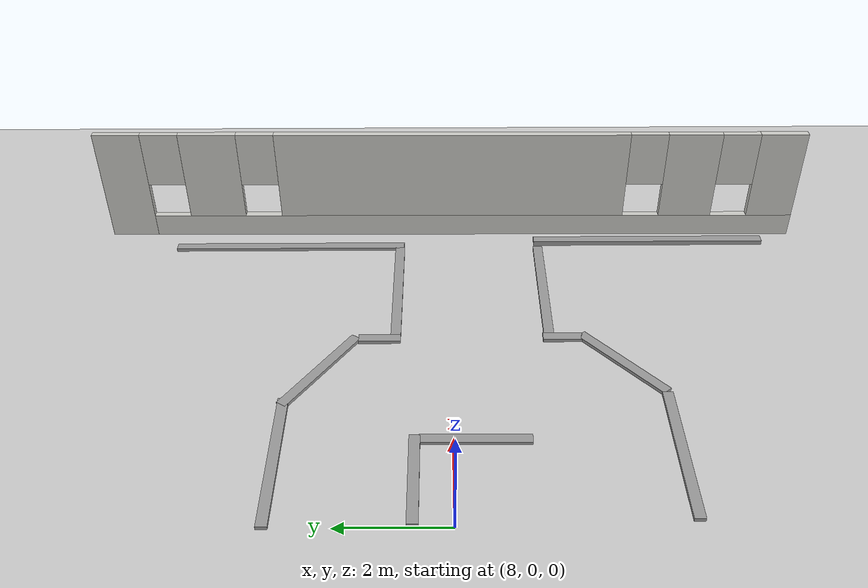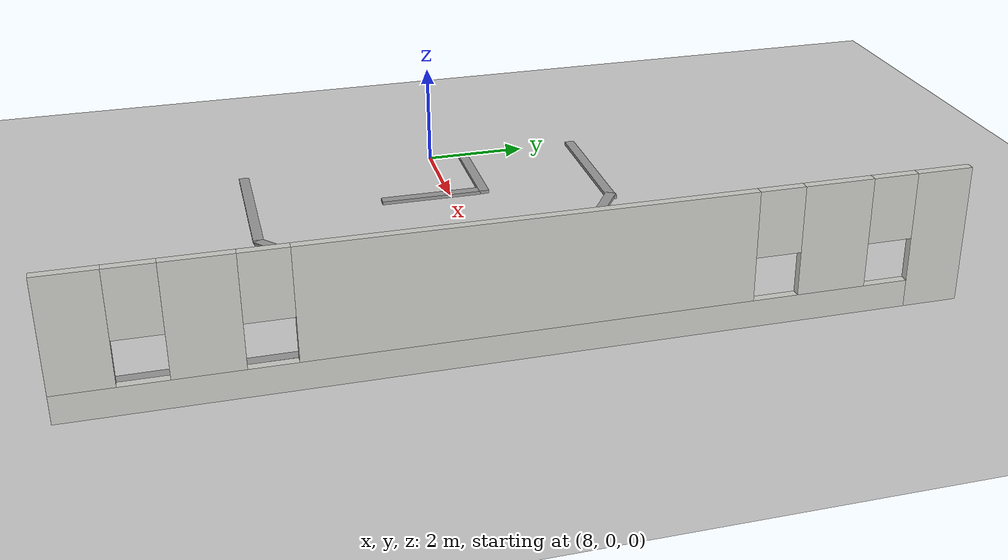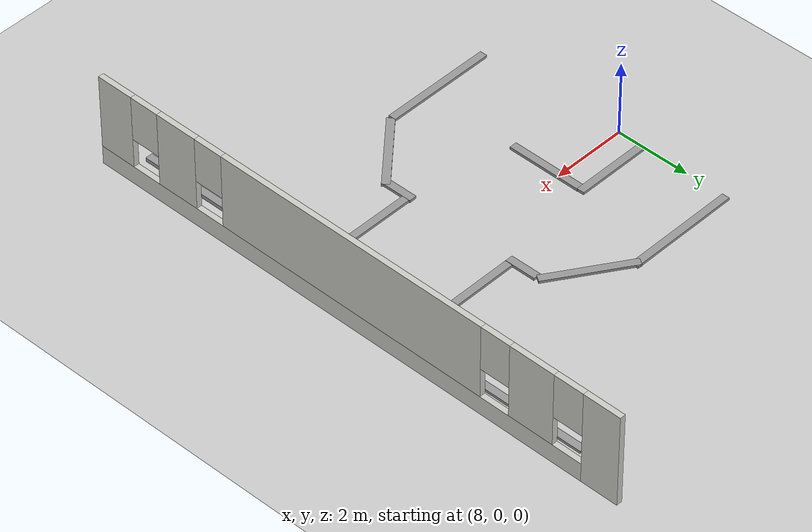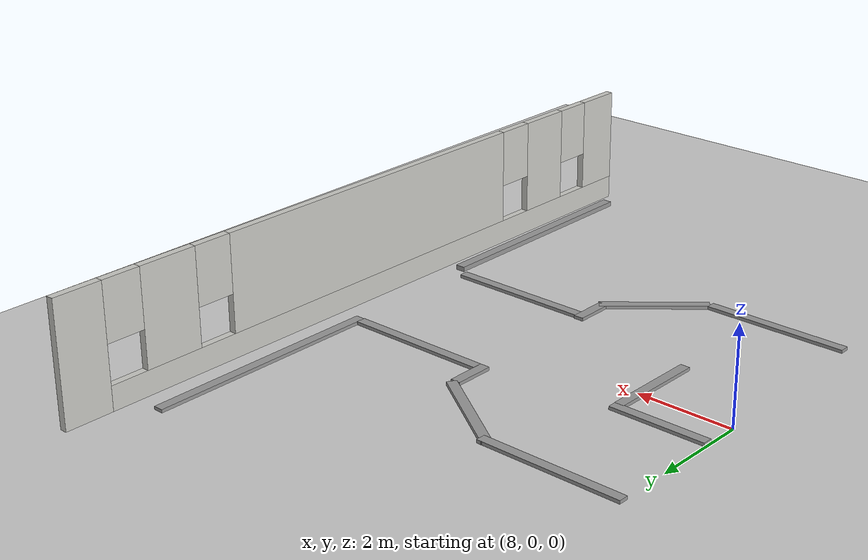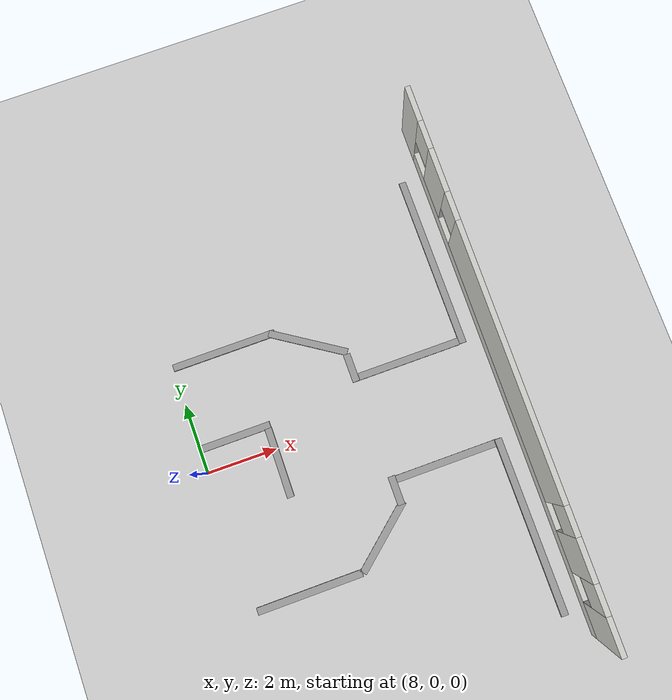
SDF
<sdf version="1.6">
 <world name="default">
  <model name="ground_plane">
   <static>1</static>
   <link name="link">
    <collision name="collision">
     <geometry><plane><normal>0 0 1</normal><size>100 100</size></plane></geometry>
     <surface><friction><ode><mu>100</mu><mu2>50</mu2></ode></friction></surface>
    </collision>
    <visual name="visual">
     <cast_shadows>0</cast_shadows>
     <geometry><plane><normal>0 0 1</normal><size>100 100</size></plane></geometry>
     <material>
      <script><uri>file://media/materials/scripts/gazebo.material</uri><name>Gazebo/Grey</name></script>
     </material>
    </visual>
   </link>
  </model>
  <model name="brick_box_3x1x3">
   <link name="link_1_clone_1">
    <pose>22.9433 -0.208958 0.688101 0 -0 0</pose>
    <inertial>
     <mass>1</mass>
     <inertia>
      <ixx>0.166667</ixx>
      <ixy>0</ixy>
      <ixz>0</ixz>
      <iyy>0.166667</iyy>
      <iyz>0</iyz>
      <izz>0.166667</izz>
     </inertia>
    </inertial>
    <visual name="visual">
     <pose>0 0 -0.5 0 -0 0</pose>
     <geometry><box><size>0.2 5 0.1</size></box></geometry>
     <material>
      <lighting>1</lighting>
      <script><uri>file://media/materials/scripts/gazebo.material</uri><name>Gazebo/Grey</name></script>
      <ambient>0.3 0.3 0.3 1</ambient>
      <diffuse>0.7 0.7 0.7 1</diffuse>
      <specular>0.01 0.01 0.01 1</specular>
      <emissive>0 0 0 1</emissive>
      <shader type="vertex"><normal_map>__default__</normal_map></shader>
     </material>
    </visual>
    <collision name="collision">
     <pose>0 0 -0.5 0 -0 0</pose>
     <geometry><box><size>0.1 5 0.2</size></box></geometry>
     <surface>
      <friction>
       <ode><mu>1</mu><mu2>1</mu2><fdir1>0 0 0</fdir1><slip1>0</slip1><slip2>0</slip2></ode>
       <torsional>
        <coefficient>1</coefficient>
        <patch_radius>0</patch_radius>
        <surface_radius>0</surface_radius>
        <use_patch_radius>1</use_patch_radius>
        <ode><slip>0</slip></ode>
       </torsional>
      </friction>
      <bounce><restitution_coefficient>0</restitution_coefficient><threshold>1e+06</threshold></bounce>
      <contact>
       <collide_without_contact>0</collide_without_contact>
       <collide_without_contact_bitmask>1</collide_without_contact_bitmask>
       <collide_bitmask>1</collide_bitmask>
       <ode>
        <soft_cfm>0</soft_cfm>
        <soft_erp>0.2</soft_erp>
        <kp>1e+13</kp>
        <kd>1</kd>
        <max_vel>0.01</max_vel>
        <min_depth>0</min_depth>
       </ode>
       <bullet>
        <split_impulse>1</split_impulse>
        <split_impulse_penetration_threshold>-0.01</split_impulse_penetration_threshold>
        <soft_cfm>0</soft_cfm>
        <soft_erp>0.2</soft_erp>
        <kp>1e+13</kp>
        <kd>1</kd>
       </bullet>
      </contact>
     </surface>
    </collision>
   </link>
   <link name="link_1_clone_2">
    <pose>23.0117 7.63499 0.5 0 -0 0</pose>
    <inertial>
     <mass>1</mass>
     <inertia>
      <ixx>0.166667</ixx>
      <ixy>0</ixy>
      <ixz>0</ixz>
      <iyy>0.166667</iyy>
      <iyz>0</iyz>
      <izz>0.166667</izz>
     </inertia>
    </inertial>
    <visual name="visual">
     <pose>0 0 -0.5 0 -0 0</pose>
     <geometry><box><size>0.2 5 0.1</size></box></geometry>
     <material>
      <lighting>1</lighting>
      <script><uri>file://media/materials/scripts/gazebo.material</uri><name>Gazebo/Grey</name></script>
      <ambient>0.3 0.3 0.3 1</ambient>
      <diffuse>0.7 0.7 0.7 1</diffuse>
      <specular>0.01 0.01 0.01 1</specular>
      <emissive>0 0 0 1</emissive>
      <shader type="vertex"><normal_map>__default__</normal_map></shader>
     </material>
    </visual>
    <collision name="collision">
     <pose>0 0 -0.5 0 -0 0</pose>
     <geometry><box><size>0.1 5 0.2</size></box></geometry>
     <surface>
      <friction>
       <ode><mu>1</mu><mu2>1</mu2><fdir1>0 0 0</fdir1><slip1>0</slip1><slip2>0</slip2></ode>
       <torsional>
        <coefficient>1</coefficient>
        <patch_radius>0</patch_radius>
        <surface_radius>0</surface_radius>
        <use_patch_radius>1</use_patch_radius>
        <ode><slip>0</slip></ode>
       </torsional>
      </friction>
      <bounce><restitution_coefficient>0</restitution_coefficient><threshold>1e+06</threshold></bounce>
      <contact>
       <collide_without_contact>0</collide_without_contact>
       <collide_without_contact_bitmask>1</collide_without_contact_bitmask>
       <collide_bitmask>1</collide_bitmask>
       <ode>
        <soft_cfm>0</soft_cfm>
        <soft_erp>0.2</soft_erp>
        <kp>1e+13</kp>
        <kd>1</kd>
        <max_vel>0.01</max_vel>
        <min_depth>0</min_depth>
       </ode>
       <bullet>
        <split_impulse>1</split_impulse>
        <split_impulse_penetration_threshold>-0.01</split_impulse_penetration_threshold>
        <soft_cfm>0</soft_cfm>
        <soft_erp>0.2</soft_erp>
        <kp>1e+13</kp>
        <kd>1</kd>
       </bullet>
      </contact>
     </surface>
    </collision>
   </link>
   <link name="link_1_clone_3_clone_0">
    <pose>21.4333 2.1957 0.5 0 -0 0</pose>
    <inertial>
     <mass>1</mass>
     <inertia>
      <ixx>0.166667</ixx>
      <ixy>0</ixy>
      <ixz>0</ixz>
      <iyy>0.166667</iyy>
      <iyz>0</iyz>
      <izz>0.166667</izz>
     </inertia>
    </inertial>
    <visual name="visual">
     <pose>0 0 -0.5 0 -0 0</pose>
     <geometry><box><size>3 0.2 0.1</size></box></geometry>
     <material>
      <lighting>1</lighting>
      <script><uri>file://media/materials/scripts/gazebo.material</uri><name>Gazebo/Grey</name></script>
      <ambient>0.3 0.3 0.3 1</ambient>
      <diffuse>0.7 0.7 0.7 1</diffuse>
      <specular>0.01 0.01 0.01 1</specular>
      <emissive>0 0 0 1</emissive>
      <shader type="vertex"><normal_map>__default__</normal_map></shader>
     </material>
    </visual>
    <collision name="collision">
     <pose>0 0 -0.5 0 -0 0</pose>
     <geometry><box><size>3 0.2 0.2</size></box></geometry>
     <surface>
      <friction>
       <ode><mu>1</mu><mu2>1</mu2><fdir1>0 0 0</fdir1><slip1>0</slip1><slip2>0</slip2></ode>
       <torsional>
        <coefficient>1</coefficient>
        <patch_radius>0</patch_radius>
        <surface_radius>0</surface_radius>
        <use_patch_radius>1</use_patch_radius>
        <ode><slip>0</slip></ode>
       </torsional>
      </friction>
      <bounce><restitution_coefficient>0</restitution_coefficient><threshold>1e+06</threshold></bounce>
      <contact>
       <collide_without_contact>0</collide_without_contact>
       <collide_without_contact_bitmask>1</collide_without_contact_bitmask>
       <collide_bitmask>1</collide_bitmask>
       <ode>
        <soft_cfm>0</soft_cfm>
        <soft_erp>0.2</soft_erp>
        <kp>1e+13</kp>
        <kd>1</kd>
        <max_vel>0.01</max_vel>
        <min_depth>0</min_depth>
       </ode>
       <bullet>
        <split_impulse>1</split_impulse>
        <split_impulse_penetration_threshold>-0.01</split_impulse_penetration_threshold>
        <soft_cfm>0</soft_cfm>
        <soft_erp>0.2</soft_erp>
        <kp>1e+13</kp>
        <kd>1</kd>
       </bullet>
      </contact>
     </surface>
    </collision>
   </link>
   <link name="link_1_clone_3_clone_1">
    <pose>21.421 5.22151 0.5 0 -0 0</pose>
    <inertial>
     <mass>1</mass>
     <inertia>
      <ixx>0.166667</ixx>
      <ixy>0</ixy>
      <ixz>0</ixz>
      <iyy>0.166667</iyy>
      <iyz>0</iyz>
      <izz>0.166667</izz>
     </inertia>
    </inertial>
    <visual name="visual">
     <pose>0 0 -0.5 0 -0 0</pose>
     <geometry><box><size>3 0.2 0.1</size></box></geometry>
     <material>
      <lighting>1</lighting>
      <script><uri>file://media/materials/scripts/gazebo.material</uri><name>Gazebo/Grey</name></script>
      <ambient>0.3 0.3 0.3 1</ambient>
      <diffuse>0.7 0.7 0.7 1</diffuse>
      <specular>0.01 0.01 0.01 1</specular>
      <emissive>0 0 0 1</emissive>
      <shader type="vertex"><normal_map>__default__</normal_map></shader>
     </material>
    </visual>
    <collision name="collision">
     <pose>0 0 -0.5 0 -0 0</pose>
     <geometry><box><size>3 0.2 0.2</size></box></geometry>
     <surface>
      <friction>
       <ode><mu>1</mu><mu2>1</mu2><fdir1>0 0 0</fdir1><slip1>0</slip1><slip2>0</slip2></ode>
       <torsional>
        <coefficient>1</coefficient>
        <patch_radius>0</patch_radius>
        <surface_radius>0</surface_radius>
        <use_patch_radius>1</use_patch_radius>
        <ode><slip>0</slip></ode>
       </torsional>
      </friction>
      <bounce><restitution_coefficient>0</restitution_coefficient><threshold>1e+06</threshold></bounce>
      <contact>
       <collide_without_contact>0</collide_without_contact>
       <collide_without_contact_bitmask>1</collide_without_contact_bitmask>
       <collide_bitmask>1</collide_bitmask>
       <ode>
        <soft_cfm>0</soft_cfm>
        <soft_erp>0.2</soft_erp>
        <kp>1e+13</kp>
        <kd>1</kd>
        <max_vel>0.01</max_vel>
        <min_depth>0</min_depth>
       </ode>
       <bullet>
        <split_impulse>1</split_impulse>
        <split_impulse_penetration_threshold>-0.01</split_impulse_penetration_threshold>
        <soft_cfm>0</soft_cfm>
        <soft_erp>0.2</soft_erp>
        <kp>1e+13</kp>
        <kd>1</kd>
       </bullet>
      </contact>
     </surface>
    </collision>
   </link>
   <link name="link_1_clone_3_clone_10_clone_1_clone_4">
    <pose>19.8376 1.90733 0.5 0 0 -1.56821</pose>
    <inertial>
     <mass>0.239353</mass>
     <inertia>
      <ixx>0.0406036</ixx>
      <ixy>0</ixy>
      <ixz>0</ixz>
      <iyy>0.0210496</iyy>
      <iyz>0</iyz>
      <izz>0.0217608</izz>
     </inertia>
    </inertial>
    <visual name="visual">
     <pose>0 0 -0.5 0 -0 0</pose>
     <geometry><box><size>0.823187 0.203535 0.1</size></box></geometry>
     <material>
      <lighting>1</lighting>
      <script><uri>file://media/materials/scripts/gazebo.material</uri><name>Gazebo/Grey</name></script>
      <ambient>0.3 0.3 0.3 1</ambient>
      <diffuse>0.7 0.7 0.7 1</diffuse>
      <specular>0.01 0.01 0.01 1</specular>
      <emissive>0 0 0 1</emissive>
      <shader type="vertex"><normal_map>__default__</normal_map></shader>
     </material>
    </visual>
    <collision name="collision">
     <pose>0 0 -0.5 0 -0 0</pose>
     <geometry><box><size>0.823187 0.203535 0.2</size></box></geometry>
     <surface>
      <friction>
       <ode><mu>1</mu><mu2>1</mu2><fdir1>0 0 0</fdir1><slip1>0</slip1><slip2>0</slip2></ode>
       <torsional>
        <coefficient>1</coefficient>
        <patch_radius>0</patch_radius>
        <surface_radius>0</surface_radius>
        <use_patch_radius>1</use_patch_radius>
        <ode><slip>0</slip></ode>
       </torsional>
      </friction>
      <bounce><restitution_coefficient>0</restitution_coefficient><threshold>1e+06</threshold></bounce>
      <contact>
       <collide_without_contact>0</collide_without_contact>
       <collide_without_contact_bitmask>1</collide_without_contact_bitmask>
       <collide_bitmask>1</collide_bitmask>
       <ode>
        <soft_cfm>0</soft_cfm>
        <soft_erp>0.2</soft_erp>
        <kp>1e+13</kp>
        <kd>1</kd>
        <max_vel>0.01</max_vel>
        <min_depth>0</min_depth>
       </ode>
       <bullet>
        <split_impulse>1</split_impulse>
        <split_impulse_penetration_threshold>-0.01</split_impulse_penetration_threshold>
        <soft_cfm>0</soft_cfm>
        <soft_erp>0.2</soft_erp>
        <kp>1e+13</kp>
        <kd>1</kd>
       </bullet>
      </contact>
     </surface>
    </collision>
   </link>
   <link name="link_1_clone_3_clone_10_clone_1_clone_5">
    <pose>19.8123 5.5335 0.5 0 0 -1.56821</pose>
    <inertial>
     <mass>0.239353</mass>
     <inertia>
      <ixx>0.0406036</ixx>
      <ixy>0</ixy>
      <ixz>0</ixz>
      <iyy>0.0210496</iyy>
      <iyz>0</iyz>
      <izz>0.0217608</izz>
     </inertia>
    </inertial>
    <visual name="visual">
     <pose>0 0 -0.5 0 -0 0</pose>
     <geometry><box><size>0.823187 0.203535 0.1</size></box></geometry>
     <material>
      <lighting>1</lighting>
      <script><uri>file://media/materials/scripts/gazebo.material</uri><name>Gazebo/Grey</name></script>
      <ambient>0.3 0.3 0.3 1</ambient>
      <diffuse>0.7 0.7 0.7 1</diffuse>
      <specular>0.01 0.01 0.01 1</specular>
      <emissive>0 0 0 1</emissive>
      <shader type="vertex"><normal_map>__default__</normal_map></shader>
     </material>
    </visual>
    <collision name="collision">
     <pose>0 0 -0.5 0 -0 0</pose>
     <geometry><box><size>0.823187 0.203535 0.2</size></box></geometry>
     <surface>
      <friction>
       <ode><mu>1</mu><mu2>1</mu2><fdir1>0 0 0</fdir1><slip1>0</slip1><slip2>0</slip2></ode>
       <torsional>
        <coefficient>1</coefficient>
        <patch_radius>0</patch_radius>
        <surface_radius>0</surface_radius>
        <use_patch_radius>1</use_patch_radius>
        <ode><slip>0</slip></ode>
       </torsional>
      </friction>
      <bounce><restitution_coefficient>0</restitution_coefficient><threshold>1e+06</threshold></bounce>
      <contact>
       <collide_without_contact>0</collide_without_contact>
       <collide_without_contact_bitmask>1</collide_without_contact_bitmask>
       <collide_bitmask>1</collide_bitmask>
       <ode>
        <soft_cfm>0</soft_cfm>
        <soft_erp>0.2</soft_erp>
        <kp>1e+13</kp>
        <kd>1</kd>
        <max_vel>0.01</max_vel>
        <min_depth>0</min_depth>
       </ode>
       <bullet>
        <split_impulse>1</split_impulse>
        <split_impulse_penetration_threshold>-0.01</split_impulse_penetration_threshold>
        <soft_cfm>0</soft_cfm>
        <soft_erp>0.2</soft_erp>
        <kp>1e+13</kp>
        <kd>1</kd>
       </bullet>
      </contact>
     </surface>
    </collision>
   </link>
   <link name="link_1_clone_3_clone_10_clone_4">
    <pose>18.8978 6.62107 0.5 0 0 -0.579619</pose>
    <inertial>
     <mass>0.66633</mass>
     <inertia>
      <ixx>0.113036</ixx>
      <ixy>0</ixy>
      <ixz>0</ixz>
      <iyy>0.0793326</iyy>
      <iyz>0</iyz>
      <izz>0.0813132</izz>
     </inertia>
    </inertial>
    <visual name="visual">
     <pose>0 0 -0.5 0 -0 0</pose>
     <geometry><box><size>2.29164 0.203535 0.1</size></box></geometry>
     <material>
      <lighting>1</lighting>
      <script><uri>file://media/materials/scripts/gazebo.material</uri><name>Gazebo/Grey</name></script>
      <ambient>0.3 0.3 0.3 1</ambient>
      <diffuse>0.7 0.7 0.7 1</diffuse>
      <specular>0.01 0.01 0.01 1</specular>
      <emissive>0 0 0 1</emissive>
      <shader type="vertex"><normal_map>__default__</normal_map></shader>
     </material>
    </visual>
    <collision name="collision">
     <pose>0 0 -0.5 0 -0 0</pose>
     <geometry><box><size>2.29164 0.203535 0.2</size></box></geometry>
     <surface>
      <friction>
       <ode><mu>1</mu><mu2>1</mu2><fdir1>0 0 0</fdir1><slip1>0</slip1><slip2>0</slip2></ode>
       <torsional>
        <coefficient>1</coefficient>
        <patch_radius>0</patch_radius>
        <surface_radius>0</surface_radius>
        <use_patch_radius>1</use_patch_radius>
        <ode><slip>0</slip></ode>
       </torsional>
      </friction>
      <bounce><restitution_coefficient>0</restitution_coefficient><threshold>1e+06</threshold></bounce>
      <contact>
       <collide_without_contact>0</collide_without_contact>
       <collide_without_contact_bitmask>1</collide_without_contact_bitmask>
       <collide_bitmask>1</collide_bitmask>
       <ode>
        <soft_cfm>0</soft_cfm>
        <soft_erp>0.2</soft_erp>
        <kp>1e+13</kp>
        <kd>1</kd>
        <max_vel>0.01</max_vel>
        <min_depth>0</min_depth>
       </ode>
       <bullet>
        <split_impulse>1</split_impulse>
        <split_impulse_penetration_threshold>-0.01</split_impulse_penetration_threshold>
        <soft_cfm>0</soft_cfm>
        <soft_erp>0.2</soft_erp>
        <kp>1e+13</kp>
        <kd>1</kd>
       </bullet>
      </contact>
     </surface>
    </collision>
   </link>
   <link name="link_1_clone_3_clone_10_clone_4_clone_clone_clone">
    <pose>19.0759 0.851415 0.5 0 0 -2.43222</pose>
    <inertial>
     <mass>0.638044</mass>
     <inertia>
      <ixx>0.108237</ixx>
      <ixy>0</ixy>
      <ixz>0</ixz>
      <iyy>0.0740707</iyy>
      <iyz>0</iyz>
      <izz>0.0759667</izz>
     </inertia>
    </inertial>
    <visual name="visual">
     <pose>0 0 -0.5 0 -0 0</pose>
     <geometry><box><size>2.19436 0.203535 0.1</size></box></geometry>
     <material>
      <lighting>1</lighting>
      <script><uri>file://media/materials/scripts/gazebo.material</uri><name>Gazebo/Grey</name></script>
      <ambient>0.3 0.3 0.3 1</ambient>
      <diffuse>0.7 0.7 0.7 1</diffuse>
      <specular>0.01 0.01 0.01 1</specular>
      <emissive>0 0 0 1</emissive>
      <shader type="vertex"><normal_map>__default__</normal_map></shader>
     </material>
    </visual>
    <collision name="collision">
     <pose>0 0 -0.5 0 -0 0</pose>
     <geometry><box><size>2.19436 0.203535 0.2</size></box></geometry>
     <surface>
      <friction>
       <ode><mu>1</mu><mu2>1</mu2><fdir1>0 0 0</fdir1><slip1>0</slip1><slip2>0</slip2></ode>
       <torsional>
        <coefficient>1</coefficient>
        <patch_radius>0</patch_radius>
        <surface_radius>0</surface_radius>
        <use_patch_radius>1</use_patch_radius>
        <ode><slip>0</slip></ode>
       </torsional>
      </friction>
      <bounce><restitution_coefficient>0</restitution_coefficient><threshold>1e+06</threshold></bounce>
      <contact>
       <collide_without_contact>0</collide_without_contact>
       <collide_without_contact_bitmask>1</collide_without_contact_bitmask>
       <collide_bitmask>1</collide_bitmask>
       <ode>
        <soft_cfm>0</soft_cfm>
        <soft_erp>0.2</soft_erp>
        <kp>1e+13</kp>
        <kd>1</kd>
        <max_vel>0.01</max_vel>
        <min_depth>0</min_depth>
       </ode>
       <bullet>
        <split_impulse>1</split_impulse>
        <split_impulse_penetration_threshold>-0.01</split_impulse_penetration_threshold>
        <soft_cfm>0</soft_cfm>
        <soft_erp>0.2</soft_erp>
        <kp>1e+13</kp>
        <kd>1</kd>
       </bullet>
      </contact>
     </surface>
    </collision>
   </link>
   <link name="link_1_clone_3_clone_6_clone_clone_1">
    <pose>16.1511 4.7991 0.5 0 -0 0</pose>
    <inertial>
     <mass>0.667428</mass>
     <inertia>
      <ixx>0.111238</ixx>
      <ixy>0</ixy>
      <ixz>0</ixz>
      <iyy>0.0803952</iyy>
      <iyz>0</iyz>
      <izz>0.0803952</izz>
     </inertia>
    </inertial>
    <visual name="visual">
     <pose>0 0 -0.5 0 -0 0</pose>
     <geometry><box><size>2.00229 0.2 0.1</size></box></geometry>
     <material>
      <lighting>1</lighting>
      <script><uri>file://media/materials/scripts/gazebo.material</uri><name>Gazebo/Grey</name></script>
      <ambient>0.3 0.3 0.3 1</ambient>
      <diffuse>0.7 0.7 0.7 1</diffuse>
      <specular>0.01 0.01 0.01 1</specular>
      <emissive>0 0 0 1</emissive>
      <shader type="vertex"><normal_map>__default__</normal_map></shader>
     </material>
    </visual>
    <collision name="collision">
     <pose>0 0 -0.5 0 -0 0</pose>
     <geometry><box><size>2.00229 0.2 0.2</size></box></geometry>
     <surface>
      <friction>
       <ode><mu>1</mu><mu2>1</mu2><fdir1>0 0 0</fdir1><slip1>0</slip1><slip2>0</slip2></ode>
       <torsional>
        <coefficient>1</coefficient>
        <patch_radius>0</patch_radius>
        <surface_radius>0</surface_radius>
        <use_patch_radius>1</use_patch_radius>
        <ode><slip>0</slip></ode>
       </torsional>
      </friction>
      <bounce><restitution_coefficient>0</restitution_coefficient><threshold>1e+06</threshold></bounce>
      <contact>
       <collide_without_contact>0</collide_without_contact>
       <collide_without_contact_bitmask>1</collide_without_contact_bitmask>
       <collide_bitmask>1</collide_bitmask>
       <ode>
        <soft_cfm>0</soft_cfm>
        <soft_erp>0.2</soft_erp>
        <kp>1e+13</kp>
        <kd>1</kd>
        <max_vel>0.01</max_vel>
        <min_depth>0</min_depth>
       </ode>
       <bullet>
        <split_impulse>1</split_impulse>
        <split_impulse_penetration_threshold>-0.01</split_impulse_penetration_threshold>
        <soft_cfm>0</soft_cfm>
        <soft_erp>0.2</soft_erp>
        <kp>1e+13</kp>
        <kd>1</kd>
       </bullet>
      </contact>
     </surface>
    </collision>
   </link>
   <link name="link_1_clone_3_clone_6_clone_clone_clone_clone_clone">
    <pose>17.0548 3.71598 0.5 0 0 -1.57783</pose>
    <inertial>
     <mass>0.667428</mass>
     <inertia>
      <ixx>0.111238</ixx>
      <ixy>0</ixy>
      <ixz>0</ixz>
      <iyy>0.0803952</iyy>
      <iyz>0</iyz>
      <izz>0.0803952</izz>
     </inertia>
    </inertial>
    <visual name="visual">
     <pose>0 0 -0.5 0 -0 0</pose>
     <geometry><box><size>2.00229 0.2 0.1</size></box></geometry>
     <material>
      <lighting>1</lighting>
      <script><uri>file://media/materials/scripts/gazebo.material</uri><name>Gazebo/Grey</name></script>
      <ambient>0.3 0.3 0.3 1</ambient>
      <diffuse>0.7 0.7 0.7 1</diffuse>
      <specular>0.01 0.01 0.01 1</specular>
      <emissive>0 0 0 1</emissive>
      <shader type="vertex"><normal_map>__default__</normal_map></shader>
     </material>
    </visual>
    <collision name="collision">
     <pose>0 0 -0.5 0 -0 0</pose>
     <geometry><box><size>2.00229 0.2 0.2</size></box></geometry>
     <surface>
      <friction>
       <ode><mu>1</mu><mu2>1</mu2><fdir1>0 0 0</fdir1><slip1>0</slip1><slip2>0</slip2></ode>
       <torsional>
        <coefficient>1</coefficient>
        <patch_radius>0</patch_radius>
        <surface_radius>0</surface_radius>
        <use_patch_radius>1</use_patch_radius>
        <ode><slip>0</slip></ode>
       </torsional>
      </friction>
      <bounce><restitution_coefficient>0</restitution_coefficient><threshold>1e+06</threshold></bounce>
      <contact>
       <collide_without_contact>0</collide_without_contact>
       <collide_without_contact_bitmask>1</collide_without_contact_bitmask>
       <collide_bitmask>1</collide_bitmask>
       <ode>
        <soft_cfm>0</soft_cfm>
        <soft_erp>0.2</soft_erp>
        <kp>1e+13</kp>
        <kd>1</kd>
        <max_vel>0.01</max_vel>
        <min_depth>0</min_depth>
       </ode>
       <bullet>
        <split_impulse>1</split_impulse>
        <split_impulse_penetration_threshold>-0.01</split_impulse_penetration_threshold>
        <soft_cfm>0</soft_cfm>
        <soft_erp>0.2</soft_erp>
        <kp>1e+13</kp>
        <kd>1</kd>
       </bullet>
      </contact>
     </surface>
    </collision>
   </link>
   <link name="link_1_clone_3_clone_8">
    <pose>16.7166 0.14783 0.5 0 -0 0</pose>
    <inertial>
     <mass>1</mass>
     <inertia>
      <ixx>0.166667</ixx>
      <ixy>0</ixy>
      <ixz>0</ixz>
      <iyy>0.166667</iyy>
      <iyz>0</iyz>
      <izz>0.166667</izz>
     </inertia>
    </inertial>
    <visual name="visual">
     <pose>0 0 -0.5 0 -0 0</pose>
     <geometry><box><size>3 0.2 0.1</size></box></geometry>
     <material>
      <lighting>1</lighting>
      <script><uri>file://media/materials/scripts/gazebo.material</uri><name>Gazebo/Grey</name></script>
      <ambient>0.3 0.3 0.3 1</ambient>
      <diffuse>0.7 0.7 0.7 1</diffuse>
      <specular>0.01 0.01 0.01 1</specular>
      <emissive>0 0 0 1</emissive>
      <shader type="vertex"><normal_map>__default__</normal_map></shader>
     </material>
    </visual>
    <collision name="collision">
     <pose>0 0 -0.5 0 -0 0</pose>
     <geometry><box><size>3 0.2 0.2</size></box></geometry>
     <surface>
      <friction>
       <ode><mu>1</mu><mu2>1</mu2><fdir1>0 0 0</fdir1><slip1>0</slip1><slip2>0</slip2></ode>
       <torsional>
        <coefficient>1</coefficient>
        <patch_radius>0</patch_radius>
        <surface_radius>0</surface_radius>
        <use_patch_radius>1</use_patch_radius>
        <ode><slip>0</slip></ode>
       </torsional>
      </friction>
      <bounce><restitution_coefficient>0</restitution_coefficient><threshold>1e+06</threshold></bounce>
      <contact>
       <collide_without_contact>0</collide_without_contact>
       <collide_without_contact_bitmask>1</collide_without_contact_bitmask>
       <collide_bitmask>1</collide_bitmask>
       <ode>
        <soft_cfm>0</soft_cfm>
        <soft_erp>0.2</soft_erp>
        <kp>1e+13</kp>
        <kd>1</kd>
        <max_vel>0.01</max_vel>
        <min_depth>0</min_depth>
       </ode>
       <bullet>
        <split_impulse>1</split_impulse>
        <split_impulse_penetration_threshold>-0.01</split_impulse_penetration_threshold>
        <soft_cfm>0</soft_cfm>
        <soft_erp>0.2</soft_erp>
        <kp>1e+13</kp>
        <kd>1</kd>
       </bullet>
      </contact>
     </surface>
    </collision>
   </link>
   <link name="link_1_clone_3_clone_9">
    <pose>16.6024 7.21797 0.5 0 -0 0</pose>
    <inertial>
     <mass>1</mass>
     <inertia>
      <ixx>0.166667</ixx>
      <ixy>0</ixy>
      <ixz>0</ixz>
      <iyy>0.166667</iyy>
      <iyz>0</iyz>
      <izz>0.166667</izz>
     </inertia>
    </inertial>
    <visual name="visual">
     <pose>0 0 -0.5 0 -0 0</pose>
     <geometry><box><size>3 0.2 0.1</size></box></geometry>
     <material>
      <lighting>1</lighting>
      <script><uri>file://media/materials/scripts/gazebo.material</uri><name>Gazebo/Grey</name></script>
      <ambient>0.3 0.3 0.3 1</ambient>
      <diffuse>0.7 0.7 0.7 1</diffuse>
      <specular>0.01 0.01 0.01 1</specular>
      <emissive>0 0 0 1</emissive>
      <shader type="vertex"><normal_map>__default__</normal_map></shader>
     </material>
    </visual>
    <collision name="collision">
     <pose>0 0 -0.5 0 -0 0</pose>
     <geometry><box><size>3 0.2 0.2</size></box></geometry>
     <surface>
      <friction>
       <ode><mu>1</mu><mu2>1</mu2><fdir1>0 0 0</fdir1><slip1>0</slip1><slip2>0</slip2></ode>
       <torsional>
        <coefficient>1</coefficient>
        <patch_radius>0</patch_radius>
        <surface_radius>0</surface_radius>
        <use_patch_radius>1</use_patch_radius>
        <ode><slip>0</slip></ode>
       </torsional>
      </friction>
      <bounce><restitution_coefficient>0</restitution_coefficient><threshold>1e+06</threshold></bounce>
      <contact>
       <collide_without_contact>0</collide_without_contact>
       <collide_without_contact_bitmask>1</collide_without_contact_bitmask>
       <collide_bitmask>1</collide_bitmask>
       <ode>
        <soft_cfm>0</soft_cfm>
        <soft_erp>0.2</soft_erp>
        <kp>1e+13</kp>
        <kd>1</kd>
        <max_vel>0.01</max_vel>
        <min_depth>0</min_depth>
       </ode>
       <bullet>
        <split_impulse>1</split_impulse>
        <split_impulse_penetration_threshold>-0.01</split_impulse_penetration_threshold>
        <soft_cfm>0</soft_cfm>
        <soft_erp>0.2</soft_erp>
        <kp>1e+13</kp>
        <kd>1</kd>
       </bullet>
      </contact>
     </surface>
    </collision>
   </link>
   <static>1</static>
   <pose>-7.10254 -4.10597 0 0 -0 0</pose>
  </model>
  <model name="CV1_giardino2">
   <link name="Wall_0_clone">
    <pose>14.0185 0.09324 0 0 0 -1.57729</pose>
    <visual name="Wall_0_Visual_4">
     <pose>5.1919 0 1.5 0 -0 0</pose>
     <geometry><box><size>1.15146 0.15 2</size></box></geometry>
     <material>
      <script><uri>file://media/materials/scripts/gazebo.material</uri><name>Gazebo/CeilingTiled</name></script>
      <ambient>1 1 1 1</ambient>
      <diffuse>1 1 1 1</diffuse>
      <specular>0 0 0 1</specular>
      <emissive>0 0 0 1</emissive>
      <shader type="pixel"/>
     </material>
    </visual>
    <visual name="Wall_0_Visual_1">
     <pose>0.499892 0 0.25 0 -0 0</pose>
     <geometry><box><size>14.1401 0.15 0.5</size></box></geometry>
     <material>
      <script><uri>file://media/materials/scripts/gazebo.material</uri><name>Gazebo/CeilingTiled</name></script>
      <ambient>1 1 1 1</ambient>
      <diffuse>1 1 1 1</diffuse>
      <specular>0 0 0 1</specular>
      <emissive>0 0 0 1</emissive>
      <shader type="pixel"/>
     </material>
    </visual>
    <visual name="Wall_0_Visual_0">
     <pose>-7.07005 0 1.25 0 -0 0</pose>
     <geometry><box><size>0.999785 0.15 2.5</size></box></geometry>
     <material>
      <script><uri>file://media/materials/scripts/gazebo.material</uri><name>Gazebo/CeilingTiled</name></script>
      <ambient>1 1 1 1</ambient>
      <diffuse>1 1 1 1</diffuse>
      <specular>0 0 0 1</specular>
      <emissive>0 0 0 1</emissive>
      <shader type="pixel"/>
     </material>
    </visual>
    <visual name="Wall_0_Visual_2">
     <pose>-5.15824 0 1.5 0 -0 0</pose>
     <geometry><box><size>1.22384 0.15 2</size></box></geometry>
     <material>
      <script><uri>file://media/materials/scripts/gazebo.material</uri><name>Gazebo/CeilingTiled</name></script>
      <ambient>1 1 1 1</ambient>
      <diffuse>1 1 1 1</diffuse>
      <specular>0 0 0 1</specular>
      <emissive>0 0 0 1</emissive>
      <shader type="pixel"/>
     </material>
    </visual>
    <visual name="Wall_0_Visual_3">
     <pose>0.034926 0 1.5 0 -0 0</pose>
     <geometry><box><size>7.56249 0.15 2</size></box></geometry>
     <material>
      <script><uri>file://media/materials/scripts/gazebo.material</uri><name>Gazebo/CeilingTiled</name></script>
      <ambient>1 1 1 1</ambient>
      <diffuse>1 1 1 1</diffuse>
      <specular>0 0 0 1</specular>
      <emissive>0 0 0 1</emissive>
      <shader type="pixel"/>
     </material>
    </visual>
    <visual name="Wall_0_Visual_5">
     <pose>7.06879 0 1.5 0 -0 0</pose>
     <geometry><box><size>1.00231 0.15 2</size></box></geometry>
     <material>
      <script><uri>file://media/materials/scripts/gazebo.material</uri><name>Gazebo/CeilingTiled</name></script>
      <ambient>1 1 1 1</ambient>
      <diffuse>1 1 1 1</diffuse>
      <specular>0 0 0 1</specular>
      <emissive>0 0 0 1</emissive>
      <shader type="pixel"/>
     </material>
    </visual>
    <visual name="Wall_0_Visual_6">
     <pose>-6.17016 0 1.9 0 -0 0</pose>
     <geometry><box><size>0.8 0.15 1.2</size></box></geometry>
     <material>
      <script><uri>file://media/materials/scripts/gazebo.material</uri><name>Gazebo/CeilingTiled</name></script>
      <ambient>1 1 1 1</ambient>
      <diffuse>1 1 1 1</diffuse>
      <specular>0 0 0 1</specular>
      <emissive>0 0 0 1</emissive>
      <shader type="pixel"/>
     </material>
    </visual>
    <visual name="Wall_0_Visual_7">
     <pose>-4.14632 0 1.9 0 -0 0</pose>
     <geometry><box><size>0.8 0.15 1.2</size></box></geometry>
     <material>
      <script><uri>file://media/materials/scripts/gazebo.material</uri><name>Gazebo/CeilingTiled</name></script>
      <ambient>1 1 1 1</ambient>
      <diffuse>1 1 1 1</diffuse>
      <specular>0 0 0 1</specular>
      <emissive>0 0 0 1</emissive>
      <shader type="pixel"/>
     </material>
    </visual>
    <visual name="Wall_0_Visual_8">
     <pose>4.21617 0 1.9 0 -0 0</pose>
     <geometry><box><size>0.8 0.15 1.2</size></box></geometry>
     <material>
      <script><uri>file://media/materials/scripts/gazebo.material</uri><name>Gazebo/CeilingTiled</name></script>
      <ambient>1 1 1 1</ambient>
      <diffuse>1 1 1 1</diffuse>
      <specular>0 0 0 1</specular>
      <emissive>0 0 0 1</emissive>
      <shader type="pixel"/>
     </material>
    </visual>
    <visual name="Wall_0_Visual_9">
     <pose>6.16763 0 1.9 0 -0 0</pose>
     <geometry><box><size>0.8 0.15 1.2</size></box></geometry>
     <material>
      <script><uri>file://media/materials/scripts/gazebo.material</uri><name>Gazebo/CeilingTiled</name></script>
      <ambient>1 1 1 1</ambient>
      <diffuse>1 1 1 1</diffuse>
      <specular>0 0 0 1</specular>
      <emissive>0 0 0 1</emissive>
      <shader type="pixel"/>
     </material>
    </visual>
    <collision name="Wall_0_Collision_0">
     <pose>-7.07005 0 1.25 0 -0 0</pose>
     <geometry><box><size>0.999785 0.15 2.5</size></box></geometry>
     <surface>
      <friction>
       <ode><mu>1</mu><mu2>1</mu2><fdir1>0 0 0</fdir1><slip1>0</slip1><slip2>0</slip2></ode>
       <torsional>
        <coefficient>1</coefficient>
        <patch_radius>0</patch_radius>
        <surface_radius>0</surface_radius>
        <use_patch_radius>1</use_patch_radius>
        <ode><slip>0</slip></ode>
       </torsional>
      </friction>
      <bounce><restitution_coefficient>0</restitution_coefficient><threshold>1e+06</threshold></bounce>
      <contact>
       <collide_without_contact>0</collide_without_contact>
       <collide_without_contact_bitmask>1</collide_without_contact_bitmask>
       <collide_bitmask>1</collide_bitmask>
       <ode>
        <soft_cfm>0</soft_cfm>
        <soft_erp>0.2</soft_erp>
        <kp>1e+13</kp>
        <kd>1</kd>
        <max_vel>0.01</max_vel>
        <min_depth>0</min_depth>
       </ode>
       <bullet>
        <split_impulse>1</split_impulse>
        <split_impulse_penetration_threshold>-0.01</split_impulse_penetration_threshold>
        <soft_cfm>0</soft_cfm>
        <soft_erp>0.2</soft_erp>
        <kp>1e+13</kp>
        <kd>1</kd>
       </bullet>
      </contact>
     </surface>
    </collision>
    <collision name="Wall_0_Collision_1">
     <pose>0.499892 0 0.25 0 -0 0</pose>
     <geometry><box><size>14.1401 0.15 0.5</size></box></geometry>
     <surface>
      <friction>
       <ode><mu>1</mu><mu2>1</mu2><fdir1>0 0 0</fdir1><slip1>0</slip1><slip2>0</slip2></ode>
       <torsional>
        <coefficient>1</coefficient>
        <patch_radius>0</patch_radius>
        <surface_radius>0</surface_radius>
        <use_patch_radius>1</use_patch_radius>
        <ode><slip>0</slip></ode>
       </torsional>
      </friction>
      <bounce><restitution_coefficient>0</restitution_coefficient><threshold>1e+06</threshold></bounce>
      <contact>
       <collide_without_contact>0</collide_without_contact>
       <collide_without_contact_bitmask>1</collide_without_contact_bitmask>
       <collide_bitmask>1</collide_bitmask>
       <ode>
        <soft_cfm>0</soft_cfm>
        <soft_erp>0.2</soft_erp>
        <kp>1e+13</kp>
        <kd>1</kd>
        <max_vel>0.01</max_vel>
        <min_depth>0</min_depth>
       </ode>
       <bullet>
        <split_impulse>1</split_impulse>
        <split_impulse_penetration_threshold>-0.01</split_impulse_penetration_threshold>
        <soft_cfm>0</soft_cfm>
        <soft_erp>0.2</soft_erp>
        <kp>1e+13</kp>
        <kd>1</kd>
       </bullet>
      </contact>
     </surface>
    </collision>
    <collision name="Wall_0_Collision_2">
     <pose>-5.15824 0 1.5 0 -0 0</pose>
     <geometry><box><size>1.22384 0.15 2</size></box></geometry>
     <surface>
      <friction>
       <ode><mu>1</mu><mu2>1</mu2><fdir1>0 0 0</fdir1><slip1>0</slip1><slip2>0</slip2></ode>
       <torsional>
        <coefficient>1</coefficient>
        <patch_radius>0</patch_radius>
        <surface_radius>0</surface_radius>
        <use_patch_radius>1</use_patch_radius>
        <ode><slip>0</slip></ode>
       </torsional>
      </friction>
      <bounce><restitution_coefficient>0</restitution_coefficient><threshold>1e+06</threshold></bounce>
      <contact>
       <collide_without_contact>0</collide_without_contact>
       <collide_without_contact_bitmask>1</collide_without_contact_bitmask>
       <collide_bitmask>1</collide_bitmask>
       <ode>
        <soft_cfm>0</soft_cfm>
        <soft_erp>0.2</soft_erp>
        <kp>1e+13</kp>
        <kd>1</kd>
        <max_vel>0.01</max_vel>
        <min_depth>0</min_depth>
       </ode>
       <bullet>
        <split_impulse>1</split_impulse>
        <split_impulse_penetration_threshold>-0.01</split_impulse_penetration_threshold>
        <soft_cfm>0</soft_cfm>
        <soft_erp>0.2</soft_erp>
        <kp>1e+13</kp>
        <kd>1</kd>
       </bullet>
      </contact>
     </surface>
    </collision>
    <collision name="Wall_0_Collision_3">
     <pose>0.034926 0 1.5 0 -0 0</pose>
     <geometry><box><size>7.56249 0.15 2</size></box></geometry>
     <surface>
      <friction>
       <ode><mu>1</mu><mu2>1</mu2><fdir1>0 0 0</fdir1><slip1>0</slip1><slip2>0</slip2></ode>
       <torsional>
        <coefficient>1</coefficient>
        <patch_radius>0</patch_radius>
        <surface_radius>0</surface_radius>
        <use_patch_radius>1</use_patch_radius>
        <ode><slip>0</slip></ode>
       </torsional>
      </friction>
      <bounce><restitution_coefficient>0</restitution_coefficient><threshold>1e+06</threshold></bounce>
      <contact>
       <collide_without_contact>0</collide_without_contact>
       <collide_without_contact_bitmask>1</collide_without_contact_bitmask>
       <collide_bitmask>1</collide_bitmask>
       <ode>
        <soft_cfm>0</soft_cfm>
        <soft_erp>0.2</soft_erp>
        <kp>1e+13</kp>
        <kd>1</kd>
        <max_vel>0.01</max_vel>
        <min_depth>0</min_depth>
       </ode>
       <bullet>
        <split_impulse>1</split_impulse>
        <split_impulse_penetration_threshold>-0.01</split_impulse_penetration_threshold>
        <soft_cfm>0</soft_cfm>
        <soft_erp>0.2</soft_erp>
        <kp>1e+13</kp>
        <kd>1</kd>
       </bullet>
      </contact>
     </surface>
    </collision>
    <collision name="Wall_0_Collision_5">
     <pose>7.06879 0 1.5 0 -0 0</pose>
     <geometry><box><size>1.00231 0.15 2</size></box></geometry>
     <surface>
      <friction>
       <ode><mu>1</mu><mu2>1</mu2><fdir1>0 0 0</fdir1><slip1>0</slip1><slip2>0</slip2></ode>
       <torsional>
        <coefficient>1</coefficient>
        <patch_radius>0</patch_radius>
        <surface_radius>0</surface_radius>
        <use_patch_radius>1</use_patch_radius>
        <ode><slip>0</slip></ode>
       </torsional>
      </friction>
      <bounce><restitution_coefficient>0</restitution_coefficient><threshold>1e+06</threshold></bounce>
      <contact>
       <collide_without_contact>0</collide_without_contact>
       <collide_without_contact_bitmask>1</collide_without_contact_bitmask>
       <collide_bitmask>1</collide_bitmask>
       <ode>
        <soft_cfm>0</soft_cfm>
        <soft_erp>0.2</soft_erp>
        <kp>1e+13</kp>
        <kd>1</kd>
        <max_vel>0.01</max_vel>
        <min_depth>0</min_depth>
       </ode>
       <bullet>
        <split_impulse>1</split_impulse>
        <split_impulse_penetration_threshold>-0.01</split_impulse_penetration_threshold>
        <soft_cfm>0</soft_cfm>
        <soft_erp>0.2</soft_erp>
        <kp>1e+13</kp>
        <kd>1</kd>
       </bullet>
      </contact>
     </surface>
    </collision>
    <collision name="Wall_0_Collision_4">
     <pose>5.1919 0 1.5 0 -0 0</pose>
     <geometry><box><size>1.15146 0.15 2</size></box></geometry>
     <surface>
      <friction>
       <ode><mu>1</mu><mu2>1</mu2><fdir1>0 0 0</fdir1><slip1>0</slip1><slip2>0</slip2></ode>
       <torsional>
        <coefficient>1</coefficient>
        <patch_radius>0</patch_radius>
        <surface_radius>0</surface_radius>
        <use_patch_radius>1</use_patch_radius>
        <ode><slip>0</slip></ode>
       </torsional>
      </friction>
      <bounce><restitution_coefficient>0</restitution_coefficient><threshold>1e+06</threshold></bounce>
      <contact>
       <collide_without_contact>0</collide_without_contact>
       <collide_without_contact_bitmask>1</collide_without_contact_bitmask>
       <collide_bitmask>1</collide_bitmask>
       <ode>
        <soft_cfm>0</soft_cfm>
        <soft_erp>0.2</soft_erp>
        <kp>1e+13</kp>
        <kd>1</kd>
        <max_vel>0.01</max_vel>
        <min_depth>0</min_depth>
       </ode>
       <bullet>
        <split_impulse>1</split_impulse>
        <split_impulse_penetration_threshold>-0.01</split_impulse_penetration_threshold>
        <soft_cfm>0</soft_cfm>
        <soft_erp>0.2</soft_erp>
        <kp>1e+13</kp>
        <kd>1</kd>
       </bullet>
      </contact>
     </surface>
    </collision>
    <collision name="Wall_0_Collision_6">
     <pose>-6.17016 0 1.9 0 -0 0</pose>
     <geometry><box><size>0.8 0.15 1.2</size></box></geometry>
     <surface>
      <friction>
       <ode><mu>1</mu><mu2>1</mu2><fdir1>0 0 0</fdir1><slip1>0</slip1><slip2>0</slip2></ode>
       <torsional>
        <coefficient>1</coefficient>
        <patch_radius>0</patch_radius>
        <surface_radius>0</surface_radius>
        <use_patch_radius>1</use_patch_radius>
        <ode><slip>0</slip></ode>
       </torsional>
      </friction>
      <bounce><restitution_coefficient>0</restitution_coefficient><threshold>1e+06</threshold></bounce>
      <contact>
       <collide_without_contact>0</collide_without_contact>
       <collide_without_contact_bitmask>1</collide_without_contact_bitmask>
       <collide_bitmask>1</collide_bitmask>
       <ode>
        <soft_cfm>0</soft_cfm>
        <soft_erp>0.2</soft_erp>
        <kp>1e+13</kp>
        <kd>1</kd>
        <max_vel>0.01</max_vel>
        <min_depth>0</min_depth>
       </ode>
       <bullet>
        <split_impulse>1</split_impulse>
        <split_impulse_penetration_threshold>-0.01</split_impulse_penetration_threshold>
        <soft_cfm>0</soft_cfm>
        <soft_erp>0.2</soft_erp>
        <kp>1e+13</kp>
        <kd>1</kd>
       </bullet>
      </contact>
     </surface>
    </collision>
    <collision name="Wall_0_Collision_7">
     <pose>-4.14632 0 1.9 0 -0 0</pose>
     <geometry><box><size>0.8 0.15 1.2</size></box></geometry>
     <surface>
      <friction>
       <ode><mu>1</mu><mu2>1</mu2><fdir1>0 0 0</fdir1><slip1>0</slip1><slip2>0</slip2></ode>
       <torsional>
        <coefficient>1</coefficient>
        <patch_radius>0</patch_radius>
        <surface_radius>0</surface_radius>
        <use_patch_radius>1</use_patch_radius>
        <ode><slip>0</slip></ode>
       </torsional>
      </friction>
      <bounce><restitution_coefficient>0</restitution_coefficient><threshold>1e+06</threshold></bounce>
      <contact>
       <collide_without_contact>0</collide_without_contact>
       <collide_without_contact_bitmask>1</collide_without_contact_bitmask>
       <collide_bitmask>1</collide_bitmask>
       <ode>
        <soft_cfm>0</soft_cfm>
        <soft_erp>0.2</soft_erp>
        <kp>1e+13</kp>
        <kd>1</kd>
        <max_vel>0.01</max_vel>
        <min_depth>0</min_depth>
       </ode>
       <bullet>
        <split_impulse>1</split_impulse>
        <split_impulse_penetration_threshold>-0.01</split_impulse_penetration_threshold>
        <soft_cfm>0</soft_cfm>
        <soft_erp>0.2</soft_erp>
        <kp>1e+13</kp>
        <kd>1</kd>
       </bullet>
      </contact>
     </surface>
    </collision>
    <collision name="Wall_0_Collision_9">
     <pose>6.16763 0 1.9 0 -0 0</pose>
     <geometry><box><size>0.8 0.15 1.2</size></box></geometry>
     <surface>
      <friction>
       <ode><mu>1</mu><mu2>1</mu2><fdir1>0 0 0</fdir1><slip1>0</slip1><slip2>0</slip2></ode>
       <torsional>
        <coefficient>1</coefficient>
        <patch_radius>0</patch_radius>
        <surface_radius>0</surface_radius>
        <use_patch_radius>1</use_patch_radius>
        <ode><slip>0</slip></ode>
       </torsional>
      </friction>
      <bounce><restitution_coefficient>0</restitution_coefficient><threshold>1e+06</threshold></bounce>
      <contact>
       <collide_without_contact>0</collide_without_contact>
       <collide_without_contact_bitmask>1</collide_without_contact_bitmask>
       <collide_bitmask>1</collide_bitmask>
       <ode>
        <soft_cfm>0</soft_cfm>
        <soft_erp>0.2</soft_erp>
        <kp>1e+13</kp>
        <kd>1</kd>
        <max_vel>0.01</max_vel>
        <min_depth>0</min_depth>
       </ode>
       <bullet>
        <split_impulse>1</split_impulse>
        <split_impulse_penetration_threshold>-0.01</split_impulse_penetration_threshold>
        <soft_cfm>0</soft_cfm>
        <soft_erp>0.2</soft_erp>
        <kp>1e+13</kp>
        <kd>1</kd>
       </bullet>
      </contact>
     </surface>
    </collision>
    <collision name="Wall_0_Collision_8">
     <pose>4.21617 0 1.9 0 -0 0</pose>
     <geometry><box><size>0.8 0.15 1.2</size></box></geometry>
     <surface>
      <friction>
       <ode><mu>1</mu><mu2>1</mu2><fdir1>0 0 0</fdir1><slip1>0</slip1><slip2>0</slip2></ode>
       <torsional>
        <coefficient>1</coefficient>
        <patch_radius>0</patch_radius>
        <surface_radius>0</surface_radius>
        <use_patch_radius>1</use_patch_radius>
        <ode><slip>0</slip></ode>
       </torsional>
      </friction>
      <bounce><restitution_coefficient>0</restitution_coefficient><threshold>1e+06</threshold></bounce>
      <contact>
       <collide_without_contact>0</collide_without_contact>
       <collide_without_contact_bitmask>1</collide_without_contact_bitmask>
       <collide_bitmask>1</collide_bitmask>
       <ode>
        <soft_cfm>0</soft_cfm>
        <soft_erp>0.2</soft_erp>
        <kp>1e+13</kp>
        <kd>1</kd>
        <max_vel>0.01</max_vel>
        <min_depth>0</min_depth>
       </ode>
       <bullet>
        <split_impulse>1</split_impulse>
        <split_impulse_penetration_threshold>-0.01</split_impulse_penetration_threshold>
        <soft_cfm>0</soft_cfm>
        <soft_erp>0.2</soft_erp>
        <kp>1e+13</kp>
        <kd>1</kd>
       </bullet>
      </contact>
     </surface>
    </collision>
   </link>
   <static>1</static>
   <pose>2.46902 -0.09324 0 0 -0 0</pose>
  </model>
 </world>
</sdf>
